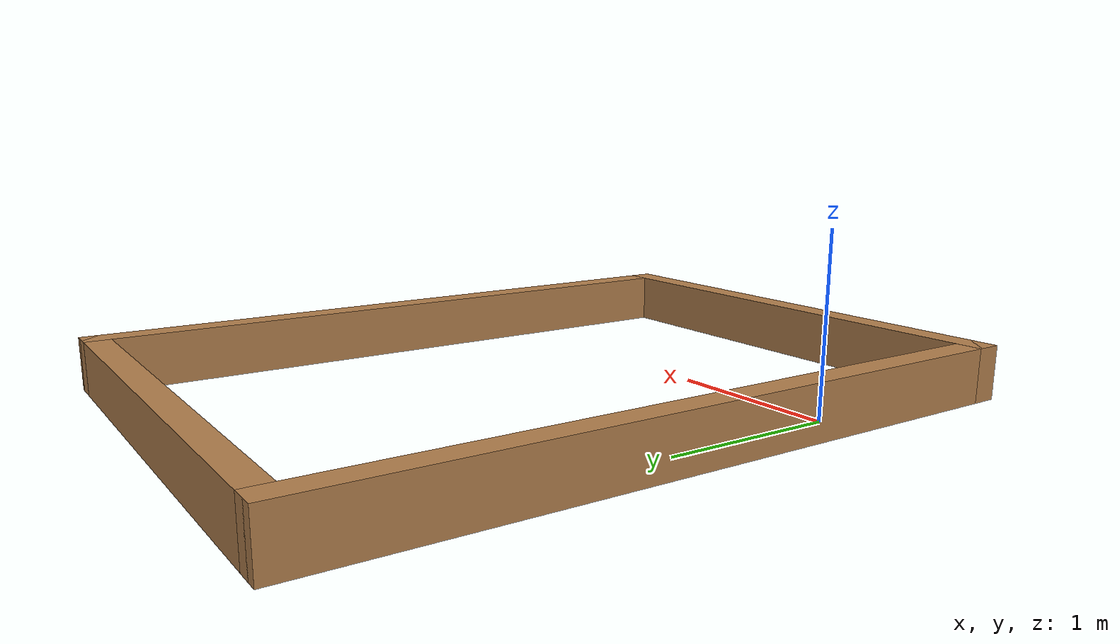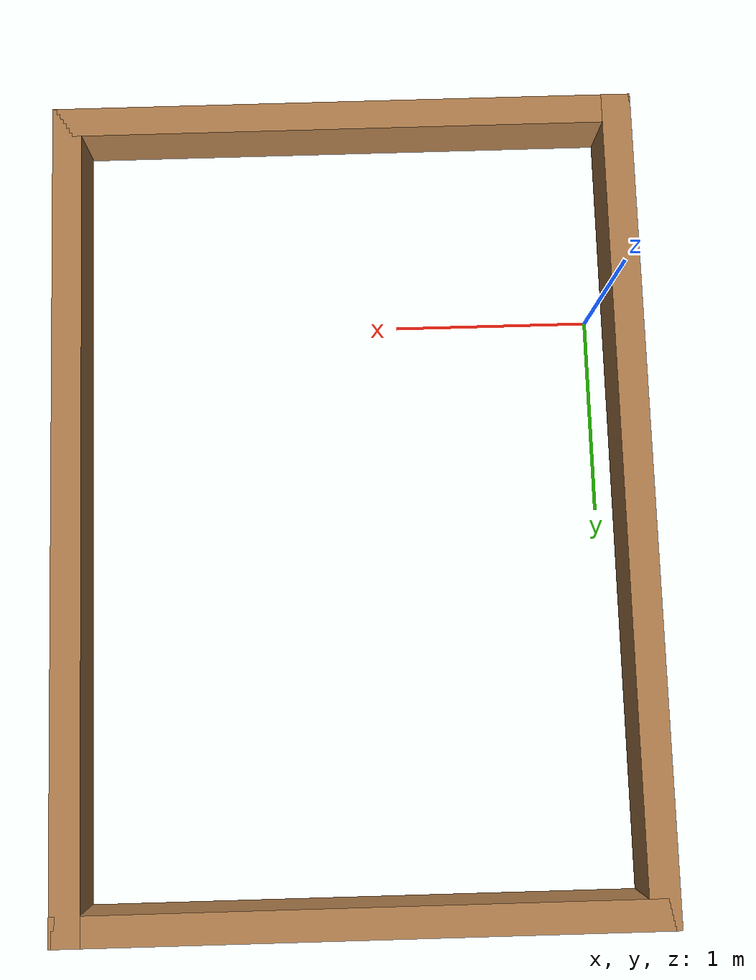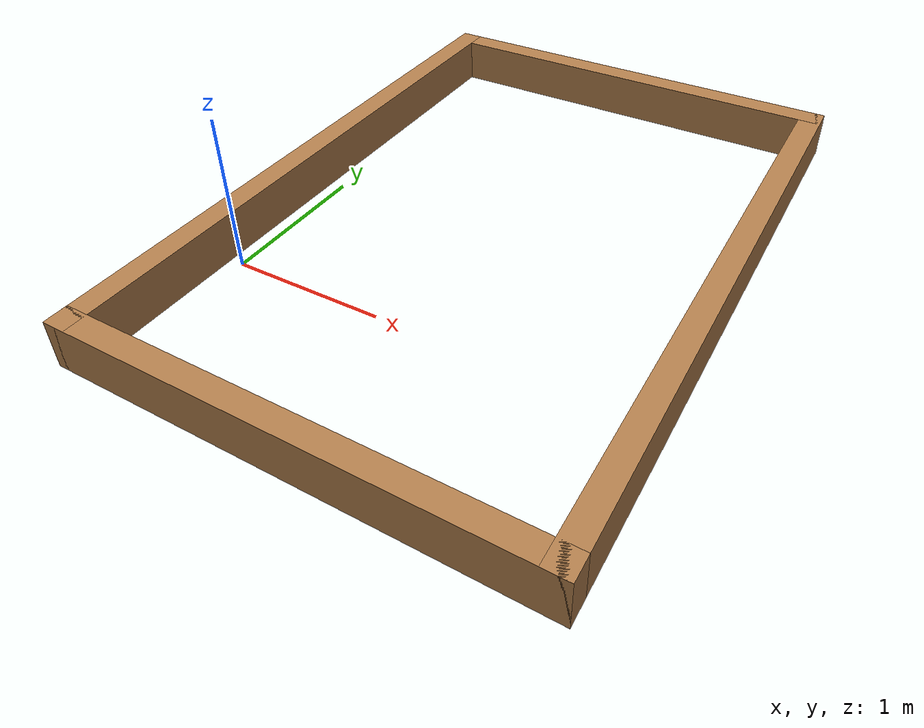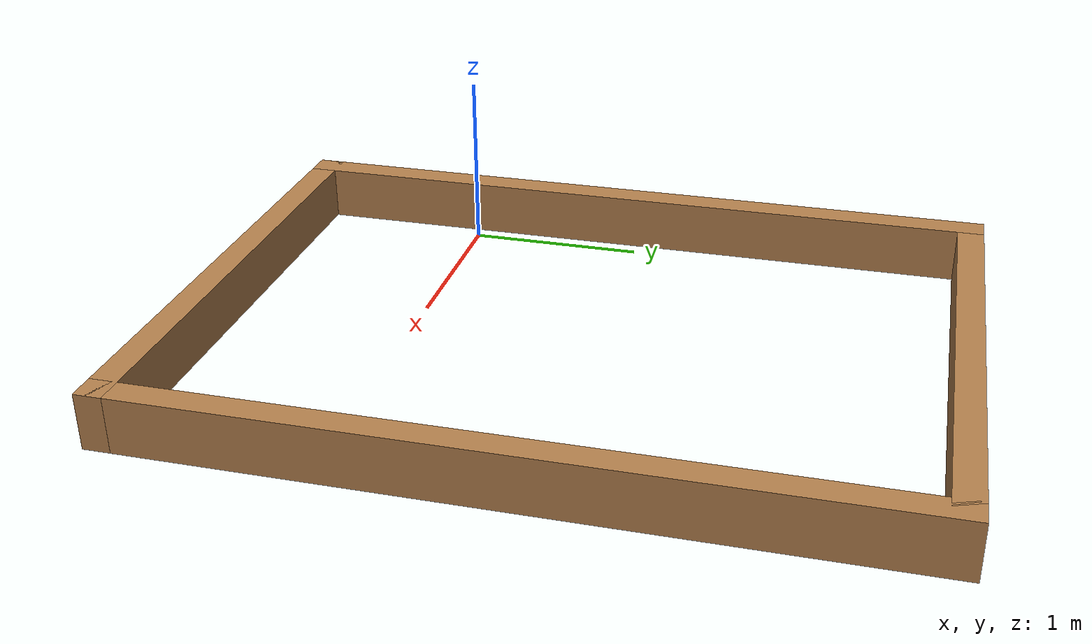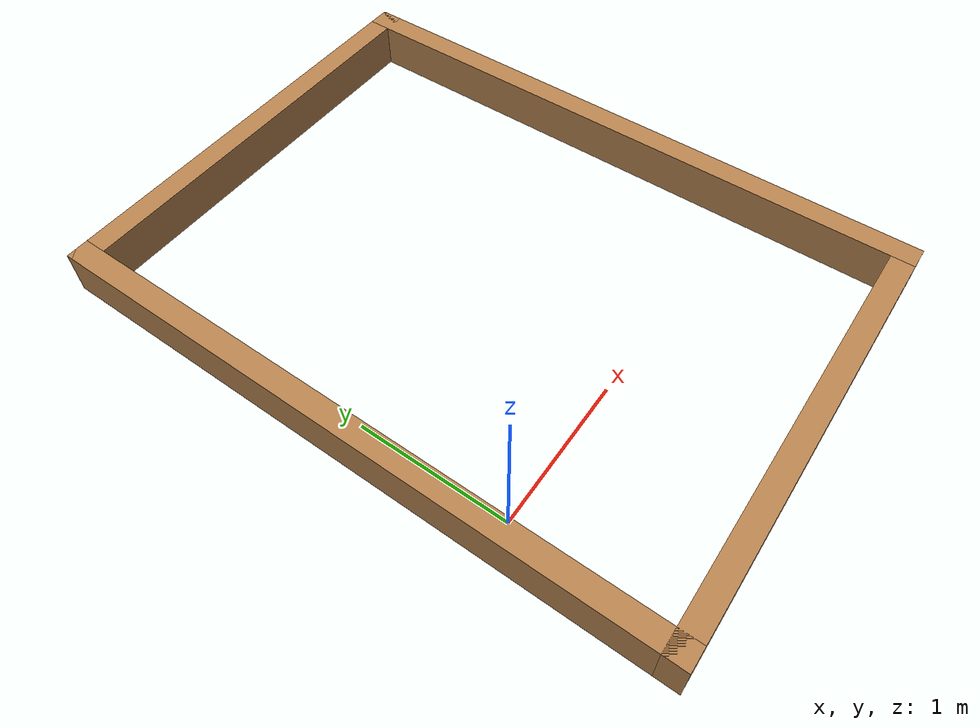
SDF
<?xml version='1.0'?>
<sdf version='1.7'>
  <model name='debi_map'>
    <pose>1.26 0.962 0 0 -0 0</pose>
    <link name='Wall_23'>
      <collision name='Wall_23_Collision'>
        <geometry>
          <box>
            <size>4.2 0.15 0.31</size>
          </box>
        </geometry>
        <pose>0 0 0.155 0 -0 0</pose>
      </collision>
      <visual name='Wall_23_Visual'>
        <pose>0 0 0.155 0 -0 0</pose>
        <geometry>
          <box>
            <size>4.2 0.15 0.31</size>
          </box>
        </geometry>
        <material>
          <script>
            <uri>file://media/materials/scripts/gazebo.material</uri>
            <name>Gazebo/Wood</name>
          </script>
          <ambient>1 1 1 1</ambient>
        </material>
        <meta>
          <layer>0</layer>
        </meta>
      </visual>
      <pose>-1.425 -0 0 0 -0 1.5708</pose>
    </link>
    <link name='Wall_25'>
      <collision name='Wall_25_Collision'>
        <geometry>
          <box>
            <size>3 0.15 0.31</size>
          </box>
        </geometry>
        <pose>0 0 0.155 0 -0 0</pose>
      </collision>
      <visual name='Wall_25_Visual'>
        <pose>0 0 0.155 0 -0 0</pose>
        <geometry>
          <box>
            <size>3 0.15 0.31</size>
          </box>
        </geometry>
        <material>
          <script>
            <uri>file://media/materials/scripts/gazebo.material</uri>
            <name>Gazebo/Wood</name>
          </script>
          <ambient>1 1 1 1</ambient>
        </material>
        <meta>
          <layer>0</layer>
        </meta>
      </visual>
      <pose>0 -2.025 0 0 -0 0</pose>
    </link>
    <link name='Wall_28'>
      <collision name='Wall_28_Collision'>
        <geometry>
          <box>
            <size>3 0.15 0.31</size>
          </box>
        </geometry>
        <pose>0 0 0.155 0 -0 0</pose>
      </collision>
      <visual name='Wall_28_Visual'>
        <pose>0 0 0.155 0 -0 0</pose>
        <geometry>
          <box>
            <size>3 0.15 0.31</size>
          </box>
        </geometry>
        <material>
          <script>
            <uri>file://media/materials/scripts/gazebo.material</uri>
            <name>Gazebo/Wood</name>
          </script>
          <ambient>1 1 1 1</ambient>
        </material>
        <meta>
          <layer>0</layer>
        </meta>
      </visual>
      <pose>0 2.025 0 0 -0 0</pose>
    </link>
    <link name='Wall_29'>
      <collision name='Wall_29_Collision'>
        <geometry>
          <box>
            <size>4.2 0.15 0.31</size>
          </box>
        </geometry>
        <pose>0 0 0.155 0 -0 0</pose>
      </collision>
      <visual name='Wall_29_Visual'>
        <pose>0 0 0.155 0 -0 0</pose>
        <geometry>
          <box>
            <size>4.2 0.15 0.31</size>
          </box>
        </geometry>
        <material>
          <script>
            <uri>file://media/materials/scripts/gazebo.material</uri>
            <name>Gazebo/Wood</name>
          </script>
          <ambient>1 1 1 1</ambient>
        </material>
        <meta>
          <layer>0</layer>
        </meta>
      </visual>
      <pose>1.425 -0 0 0 -0 -1.5708</pose>
    </link>
    <static>1</static>
  </model>
</sdf>
